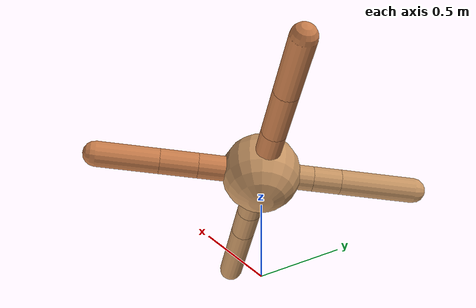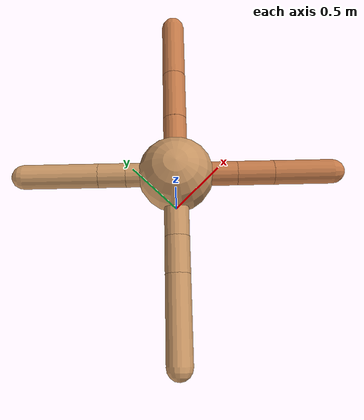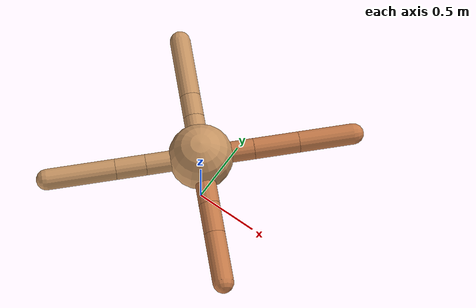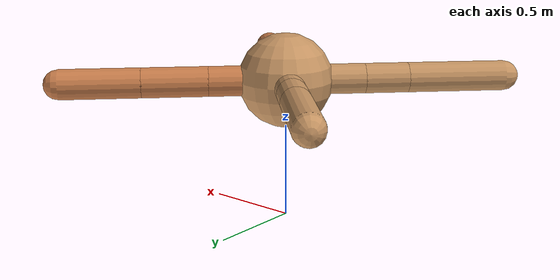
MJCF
<mujoco model="ant">
  <compiler angle="degree" coordinate="local" inertiafromgeom="true" />
  <option integrator="RK4" timestep="0.01" />
  <custom>
    <numeric data="0.0 0.0 0.55 1.0 0.0 0.0 0.0 0.0 1.0 0.0 -1.0 0.0 -1.0 0.0 1.0" name="init_qpos" />
  </custom>
  <default>
    <joint armature="1" damping="1" limited="true" />
    <geom conaffinity="0" condim="3" density="5.0" friction="1.5 0.1 0.1" margin="0.01" rgba="0.8 0.6 0.4 1" />
  </default>
  <worldbody>
    <body name="torso" pos="0 0 0.75">
      <geom name="torso_geom" pos="0 0 0" size="0.25" type="sphere" />

      <body name="front_left_leg" pos="0 0 0">
        <geom fromto="0.0 0.0 0.0 0.28758858650081315 0.28758858650081315 0.0" name="aux_1_geom" size="0.08" type="capsule" rgba=".8 .5 .3 1" />
        <body name="aux_1" pos="0.28758858650081315 0.28758858650081315 0.0">
          <joint axis="0 0 1" name="hip_1" pos="0.0 0.0 0.0" range="-40 40" type="hinge" />
          <geom fromto="0.0 0.0 0.0 0.2458017505560701 0.2458017505560701 0.0" name="left_leg_geom" size="0.08" type="capsule" rgba=".8 .5 .3 1" />
          <body pos="0.2458017505560701 0.2458017505560701 0.0" name="front_left_foot">
            <joint axis="-1 1 0" name="ankle_1" pos="0.0 0.0 0.0" range="30 100" type="hinge" />
            <geom fromto="0.0 0.0 0.0 0.2986351357059788 0.2986351357059788 0.0" name="left_ankle_geom" size="0.08" type="capsule" rgba=".8 .5 .3 1" />
          </body>
        </body>
      </body>
      <body name="front_right_leg" pos="0 0 0">
        <geom fromto="0.0 0.0 0.0 -0.230284904155626 0.230284904155626 0.0" name="aux_2_geom" size="0.08" type="capsule" />
        <body name="aux_2" pos="-0.230284904155626 0.230284904155626 0.0">
          <joint axis="0 0 1" name="hip_2" pos="0.0 0.0 0.0" range="-40 40" type="hinge" />
          <geom fromto="0.0 0.0 0.0 -0.12717607425767866 0.12717607425767866 0.0" name="right_leg_geom" size="0.08" type="capsule" />
          <body pos="-0.12717607425767866 0.12717607425767866 0.0" name="front_right_foot">
            <joint axis="1 1 0" name="ankle_2" pos="0.0 0.0 0.0" range="-100 -30" type="hinge" />
            <geom fromto="0.0 0.0 0.0 -0.3447570177828873 0.3447570177828873 0.0" name="right_ankle_geom" size="0.08" type="capsule" />
          </body>
        </body>
      </body>
      <body name="left_back_leg" pos="0 0 0">
        <geom fromto="0.0 0.0 0.0 -0.2977881106753331 -0.2977881106753331 0.0" name="aux_3_geom" size="0.08" type="capsule" />
        <body name="aux_3" pos="-0.2977881106753331 -0.2977881106753331 0.0">
          <joint axis="0 0 1" name="hip_3" pos="0.0 0.0 0.0" range="-40 40" type="hinge" />
          <geom fromto="0.0 0.0 0.0 -0.16387774146909462 -0.16387774146909462 0.0" name="back_leg_geom" size="0.08" type="capsule" />
          <body pos="-0.16387774146909462 -0.16387774146909462 0.0" name="left_back_foot">
            <joint axis="-1 1 0" name="ankle_3" pos="0.0 0.0 0.0" range="-100 -30" type="hinge" />
            <geom fromto="0.0 0.0 0.0 -0.37011334120105027 -0.37011334120105027 0.0" name="third_ankle_geom" size="0.08" type="capsule" />
          </body>
        </body>
      </body>
      <body name="right_back_leg" pos="0 0 0">
        <geom fromto="0.0 0.0 0.0 0.2834846578576004 -0.2834846578576004 0.0" name="aux_4_geom" size="0.08" type="capsule" rgba=".8 .5 .3 1" />
        <body name="aux_4" pos="0.2834846578576004 -0.2834846578576004 0.0">
          <joint axis="0 0 1" name="hip_4" pos="0.0 0.0 0.0" range="-40 40" type="hinge" />
          <geom fromto="0.0 0.0 0.0 0.1692913107423433 -0.1692913107423433 0.0" name="rightback_leg_geom" size="0.08" type="capsule" rgba=".8 .5 .3 1" />
          <body pos="0.1692913107423433 -0.1692913107423433 0.0" name="right_back_foot">
            <joint axis="1 1 0" name="ankle_4" pos="0.0 0.0 0.0" range="30 100" type="hinge" />
            <geom fromto="0.0 0.0 0.0 0.2750629997883824 -0.2750629997883824 0.0" name="fourth_ankle_geom" size="0.08" type="capsule" rgba=".8 .5 .3 1" />
          </body>
        </body>
      </body>
    </body>
  </worldbody>
  <actuator>
    <motor ctrllimited="true" ctrlrange="-1.0 1.0" joint="hip_4" gear="150" />
    <motor ctrllimited="true" ctrlrange="-1.0 1.0" joint="ankle_4" gear="150" />
    <motor ctrllimited="true" ctrlrange="-1.0 1.0" joint="hip_1" gear="150" />
    <motor ctrllimited="true" ctrlrange="-1.0 1.0" joint="ankle_1" gear="150" />
    <motor ctrllimited="true" ctrlrange="-1.0 1.0" joint="hip_2" gear="150" />
    <motor ctrllimited="true" ctrlrange="-1.0 1.0" joint="ankle_2" gear="150" />
    <motor ctrllimited="true" ctrlrange="-1.0 1.0" joint="hip_3" gear="150" />
    <motor ctrllimited="true" ctrlrange="-1.0 1.0" joint="ankle_3" gear="150" />
  </actuator>
</mujoco>
